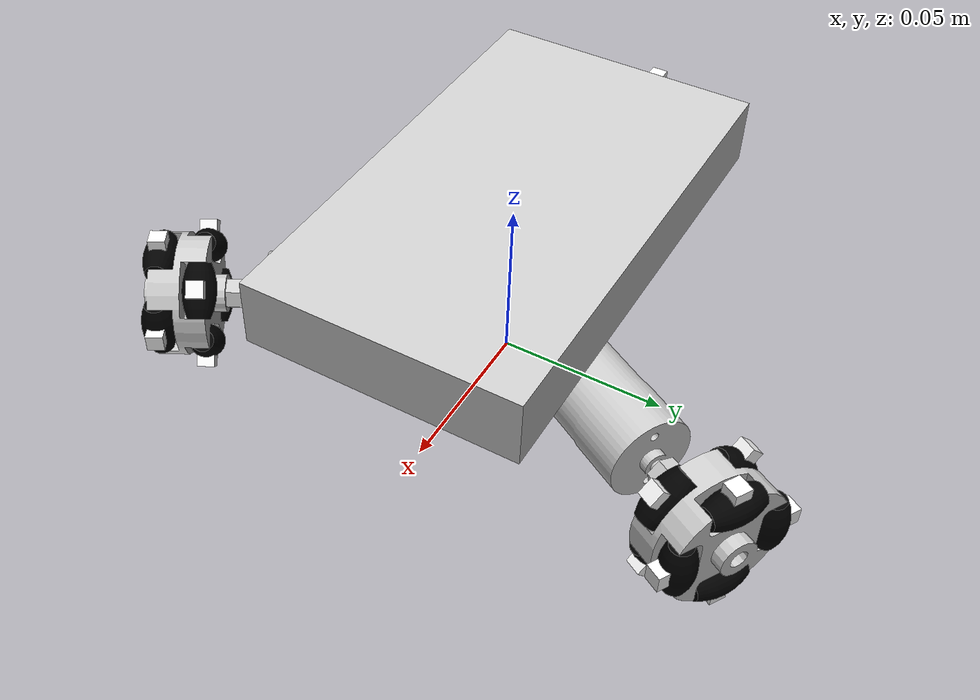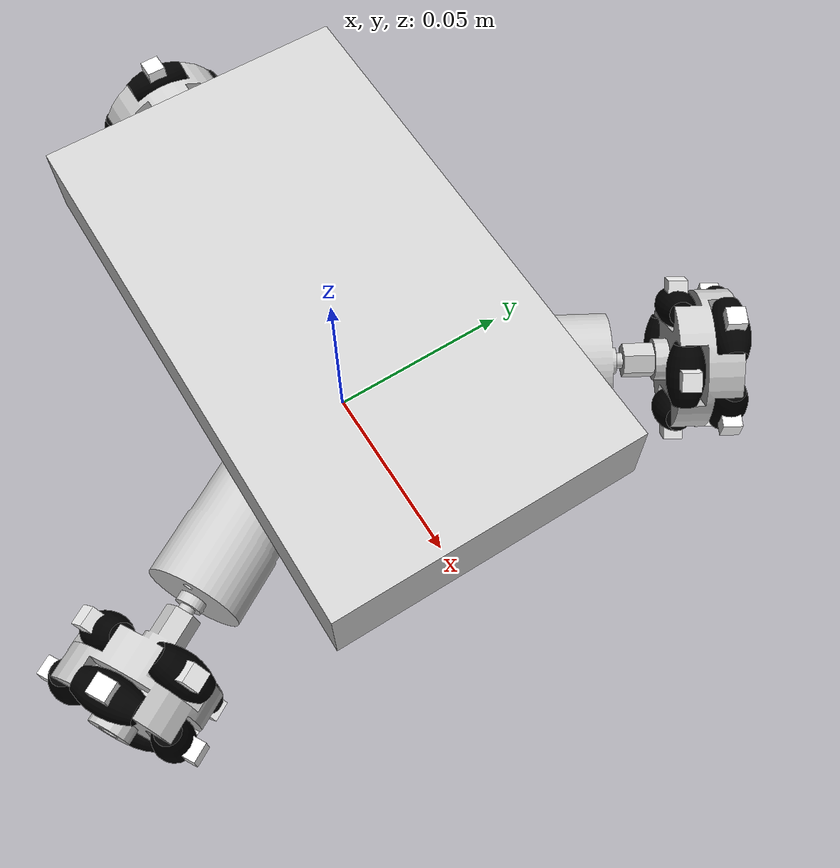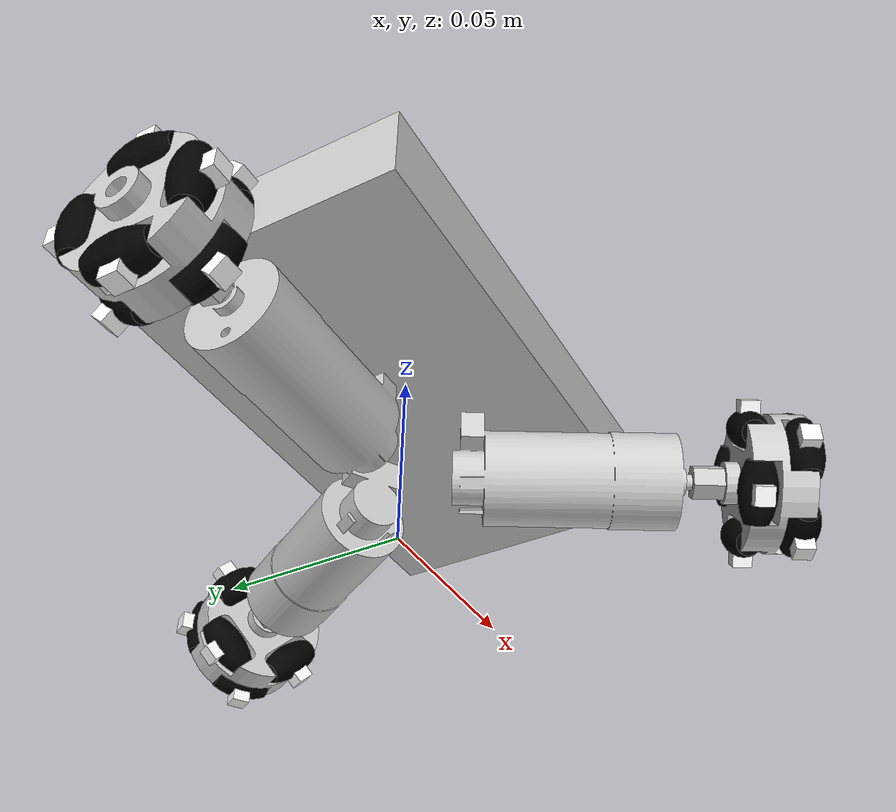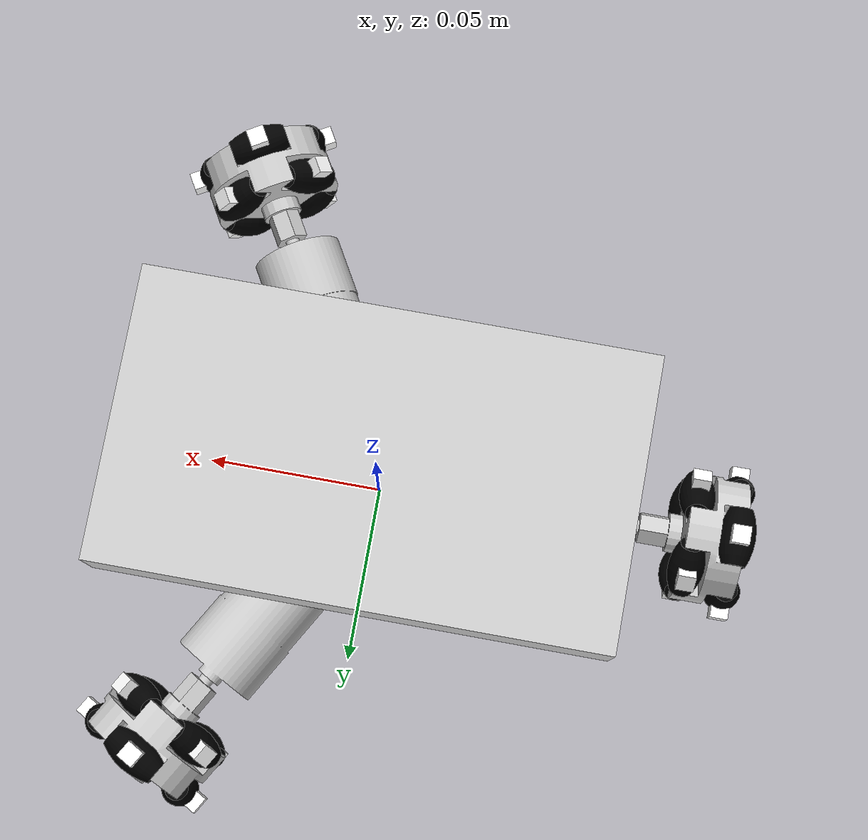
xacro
<?xml version="1.0"?>
<robot name="odm_robot" xmlns:xacro="http://ros.org/wiki/xacro">
  <xacro:include filename="$(find sim2_lecture)/xacro/odm_common.xacro"/>
  <xacro:include filename="$(find sim2_lecture)/xacro/odm_omni_wheel_set2.xacro"/>

  <link name="base_link"/>

  <joint name="body_joint" type="fixed">
    <parent link="base_link"/>
    <child  link="body_link"/>
    <origin xyz="0 0 0.05" rpy="0 0 0"/>
  </joint>
  <link name="body_link">
    <visual>
      <geometry>
        <box size="0.14 0.08 0.02" />
      </geometry>
      <material name="gray"/>
    </visual>
    <collision>
      <geometry>
        <box size="0.14 0.08 0.02" />
      </geometry>
    </collision>
    <inertial>
      <mass value="2.0"/>
      <inertia ixx="0.01" ixy="0" ixz="0" iyy="0.01" iyz="0" izz="0.01"/>
    </inertial>
  </link>

  <joint name="wheel0_attach_joint" type="fixed">
    <parent link="base_link"/>
    <child  link="wheel0_attach_link"/>
    <origin xyz="${0.07*cos(radians(60))} ${0.07*sin(radians(60))} 0.019" rpy="0 0 ${radians(60)}"/>
  </joint>
  <link name="wheel0_attach_link" />
  <xacro:omni_wheel_set prefix="wheel0" parent="wheel0_attach_link" />

  <joint name="wheel1_attach_joint" type="fixed">
    <parent link="base_link"/>
    <child  link="wheel1_attach_link"/>
    <origin xyz="${0.07*cos(radians(180))} ${0.07*sin(radians(180))} 0.019" rpy="0 0 ${radians(180)}"/>
  </joint>
  <link name="wheel1_attach_link" />
  <xacro:omni_wheel_set prefix="wheel1" parent="wheel1_attach_link" />

  <joint name="wheel2_attach_joint" type="fixed">
    <parent link="base_link"/>
    <child  link="wheel2_attach_link"/>
    <origin xyz="${0.07*cos(radians(300))} ${0.07*sin(radians(300))} 0.019" rpy="0 0 ${radians(300)}"/>
  </joint>
  <link name="wheel2_attach_link" />
  <xacro:omni_wheel_set prefix="wheel2" parent="wheel2_attach_link" />

  <gazebo>
    <plugin name="gazebo_ros_control" filename="libgazebo_ros_control.so">
      <robotNamespace>/odm_robot</robotNamespace>
      <robotSimType>gazebo_ros_control/DefaultRobotHWSim</robotSimType>
      <legacyModeNS>true</legacyModeNS>
    </plugin>

    <plugin name="ground_truth" filename="libgazebo_ros_p3d.so">
      <frameName>world</frameName>
      <bodyName>base_link</bodyName>
      <topicName>/tracker</topicName>
      <updateRate>10.0</updateRate>
    </plugin>
  </gazebo>

</robot>

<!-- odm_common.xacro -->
<robot xmlns:xacro="http://ros.org/wiki/xacro">
  <xacro:macro name="pi" params="3.1415926535897931" />
  <material name="gray">
    <color rgba="0.8 0.8 0.8 1.0"/>
  </material>
  <material name="black">
    <color rgba="0 0 0 1.0"/>
  </material>
  <material name="white">
    <color rgba="1.0 1.0 1.0 1.0"/>
  </material>
  <material name="red">
    <color rgba="1.0 0 0 1.0"/>
  </material>
  <material name="light_red">
    <color rgba="1.0 0.5 0.5 1.0"/>
  </material>
  <material name="yellow">
    <color rgba="0 1.0 1.0 1.0"/>
  </material>
</robot>

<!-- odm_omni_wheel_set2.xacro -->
<robot xmlns:xacro="http://ros.org/wiki/xacro">
  <xacro:macro name="barrel" params="prefix parent dir">
    <joint name="${prefix}_joint" type="continuous"><!-- continuous -->
      <parent link="${parent}"/>
      <child link="${prefix}_link"/>
      <origin rpy="${pi/2} 0 ${dir}" xyz="${0.014*cos(dir)} ${0.014*sin(dir)} 0.006"/>
      <axis xyz="0 0 1"/>
      <dynamics damping="0.001"/>
    </joint>
    <transmission name="${prefix}_trans">
      <type>transmission_interface/SimpleTransmission</type>
      <joint name="${prefix}_joint">
        <hardwareInterface>hardware_interface/EffortJointInterface</hardwareInterface>
      </joint>
      <actuator name="${prefix}_motor">
        <hardwareInterface>hardware_interface/EffortJointInterface</hardwareInterface>
        <mechanicalReduction>1</mechanicalReduction>
      </actuator>
    </transmission>
    <link name="${prefix}_link">
      <visual>
        <geometry>
          <mesh filename="package://sim2_lecture/stl/omni_barrel.stl" />
        </geometry>
        <material name="black"/>
      </visual>
      <collision>
        <geometry>
          <mesh filename="package://sim2_lecture/stl/omni_barrel.stl" />
        </geometry>
      </collision>
      <inertial>
        <mass value="0.002"/>
        <inertia ixx="0.000001" ixy="0" ixz="0" iyy="0.000001" iyz="0" izz="0.000001"/>
      </inertial>
    </link>
    <gazebo reference="${prefix}_link">
      <mu1 value="2.5" />
      <mu2 value="2.5" />
      <kp value="5000" />
      <kd value="10" />
      <material>Gazebo/Black</material>
    </gazebo>

    <joint name="${prefix}_mark_joint" type="fixed">
      <parent link="${prefix}_link"/>
      <child link="${prefix}_mark_link"/>
      <origin rpy="0 0 0" xyz="0.005 0 0"/>
    </joint>
    <link name="${prefix}_mark_link">
      <visual>
        <geometry>
          <box size="0.005 0.005 0.005"/>
        </geometry>
        <material name="white"/>
      </visual>
    </link>
    <gazebo reference="${prefix}_mark_link">
      <material>Gazebo/White</material>
    </gazebo>
  </xacro:macro>

  <xacro:macro name="motor" params="prefix parent">
    <joint name="${prefix}_joint" type="fixed">
      <parent link="${parent}"/>
      <child  link="${prefix}_body_link"/>
    </joint>
    <link name="${prefix}_body_link">
      <visual>
        <geometry>
          <mesh filename="package://sim2_lecture/stl/ga25_body.stl" />
        </geometry>
        <material name="gray"/>
      </visual>
      <collision>
        <origin rpy="0 ${radians(90)} 0" xyz="-0.025 0 0"/>
        <geometry>
          <cylinder radius="0.012" length="0.05" />
        </geometry>
      </collision>
      <inertial>
        <mass value="0.150"/>
        <inertia ixx="0.0001" ixy="0" ixz="0" iyy="0.0001" iyz="0" izz="0.0001"/>
      </inertial>
    </link>
    <gazebo reference="${prefix}_body_link">
      <material>Gazebo/Gray</material>
    </gazebo>

    <joint name="${prefix}_shaft_joint" type="continuous">
      <parent link="${prefix}_body_link"/>
      <child  link="${prefix}_shaft_link"/>
      <origin rpy="0 0 0" xyz="0.012 0 0"/>
      <axis xyz="1 0 0"/>
      <limit velocity="40.0" effort="3.0" />
      <dynamics damping="0.01" friction="0.0"/>
    </joint>
    <transmission name="${prefix}_shaft_trans">
      <type>transmission_interface/SimpleTransmission</type>
      <joint name="${prefix}_shaft_joint">
        <hardwareInterface>hardware_interface/EffortJointInterface</hardwareInterface>
      </joint>
      <actuator name="${prefix}_shaft_motor">
        <hardwareInterface>hardware_interface/EffortJointInterface</hardwareInterface>
        <mechanicalReduction>1</mechanicalReduction>
      </actuator>
    </transmission>

    <link name="${prefix}_shaft_link">
      <visual>
        <geometry>
          <mesh filename="package://sim2_lecture/stl/ga25_shaft.stl" />
        </geometry>
        <material name="gray"/>
      </visual>
      <inertial>
        <mass value="0.010"/>
        <inertia ixx="0.0000005" ixy="0" ixz="0" iyy="0.000001" iyz="0" izz="0.000001"/>
      </inertial>
    </link>
    <gazebo reference="${prefix}_shaft_link">
      <material>Gazebo/Gray</material>
    </gazebo>
  </xacro:macro>

  <xacro:macro name="omni_wheel_set" params="prefix parent">
    <joint name="${prefix}_base_joint" type="fixed">
      <parent link="${parent}"/>
      <child link="${prefix}_base_link"/>
      <origin rpy="0 0 0" xyz="0 0 0"/>
    </joint>
    <link name="${prefix}_base_link" >
      <inertial>
        <mass value="0.010"/>
        <inertia ixx="0.0001" ixy="0" ixz="0" iyy="0.0001" iyz="0" izz="0.0001"/>
      </inertial>
    </link>

    <joint name="${prefix}_sus_joint" type="prismatic">
      <parent link="${prefix}_base_link"/>
      <child  link="${prefix}_sus_link"/>
      <limit lower="-0.02" upper="0.02" effort="100" velocity="1.0" />
      <axis xyz="0 0 1"/>
      <origin xyz="0 0 0" rpy="0 0 0"/>
      <dynamics damping="0.01"/>
    </joint>
    <transmission name="${prefix}_sus_trans">
      <type>transmission_interface/SimpleTransmission</type>
      <joint name="${prefix}_sus_joint">
          <hardwareInterface>hardware_interface/EffortJointInterface</hardwareInterface>
      </joint>
      <actuator name="${prefix}_sus_motor">
        <hardwareInterface>hardware_interface/EffortJointInterface</hardwareInterface>
        <mechanismReduction>1</mechanismReduction>
      </actuator>
    </transmission>
    <gazebo reference="${prefix}_sus_joint">
      <kp>50000</kp>
      <kd>500</kd>
    </gazebo>
    <link name="${prefix}_sus_link">
      <inertial>
        <mass value="0.010"/>
        <inertia ixx="0.00001" ixy="0.0" ixz="0.0" iyy="0.00001" iyz="0.0" izz="0.00001"/>
      </inertial>
    </link>

    <xacro:motor prefix="${prefix}_motor" parent="${prefix}_sus_link" />

    <joint name="${prefix}_housind_joint" type="fixed">
      <parent link="${prefix}_motor_shaft_link"/>
      <child  link="${prefix}_housing_link"/>
      <origin xyz="0.012 0 0" rpy="0 ${radians(90)} 0"/>
    </joint>
    <link name="${prefix}_housing_link">
      <visual>
        <geometry>
          <mesh filename="package://sim2_lecture/stl/omni_housing.stl" />
        </geometry>
        <origin xyz="0 0 0" rpy="0 0 0"/>
        <material name="gray"/>
      </visual>
      <inertial>
        <mass value="0.025"/>
        <inertia ixx="0.00001" ixy="0" ixz="0" iyy="0.00001" iyz="0" izz="0.00001"/>
      </inertial>
    </link>
    <gazebo reference="${prefix}_housing_link">
      <material>Gazebo/Gray</material>
    </gazebo>

    <joint name="${prefix}_housing_s_joint" type="fixed">
      <parent link="${prefix}_housing_link"/>
      <child link="${prefix}_housing_s_link"/>
      <origin rpy="0 ${pi} ${pi/4}" xyz="0 0 0"/>
    </joint>
    <link name="${prefix}_housing_s_link">
      <inertial>
        <mass value="0.025"/>
        <inertia ixx="0.0001" ixy="0" ixz="0" iyy="0.0001" iyz="0" izz="0.0001"/>
      </inertial>
    </link>

    <xacro:barrel prefix="${prefix}_barrel_1" parent="${prefix}_housing_link" dir="0"/>
    <xacro:barrel prefix="${prefix}_barrel_2" parent="${prefix}_housing_link" dir="${pi/2}"/>
    <xacro:barrel prefix="${prefix}_barrel_3" parent="${prefix}_housing_link" dir="${pi}"/>
    <xacro:barrel prefix="${prefix}_barrel_4" parent="${prefix}_housing_link" dir="${-pi/2}"/>
    <xacro:barrel prefix="${prefix}_barrel_5" parent="${prefix}_housing_s_link" dir="0"/>
    <xacro:barrel prefix="${prefix}_barrel_6" parent="${prefix}_housing_s_link" dir="${pi/2}"/>
    <xacro:barrel prefix="${prefix}_barrel_7" parent="${prefix}_housing_s_link" dir="${pi}"/>
    <xacro:barrel prefix="${prefix}_barrel_8" parent="${prefix}_housing_s_link" dir="${-pi/2}"/>
  </xacro:macro>

</robot>
